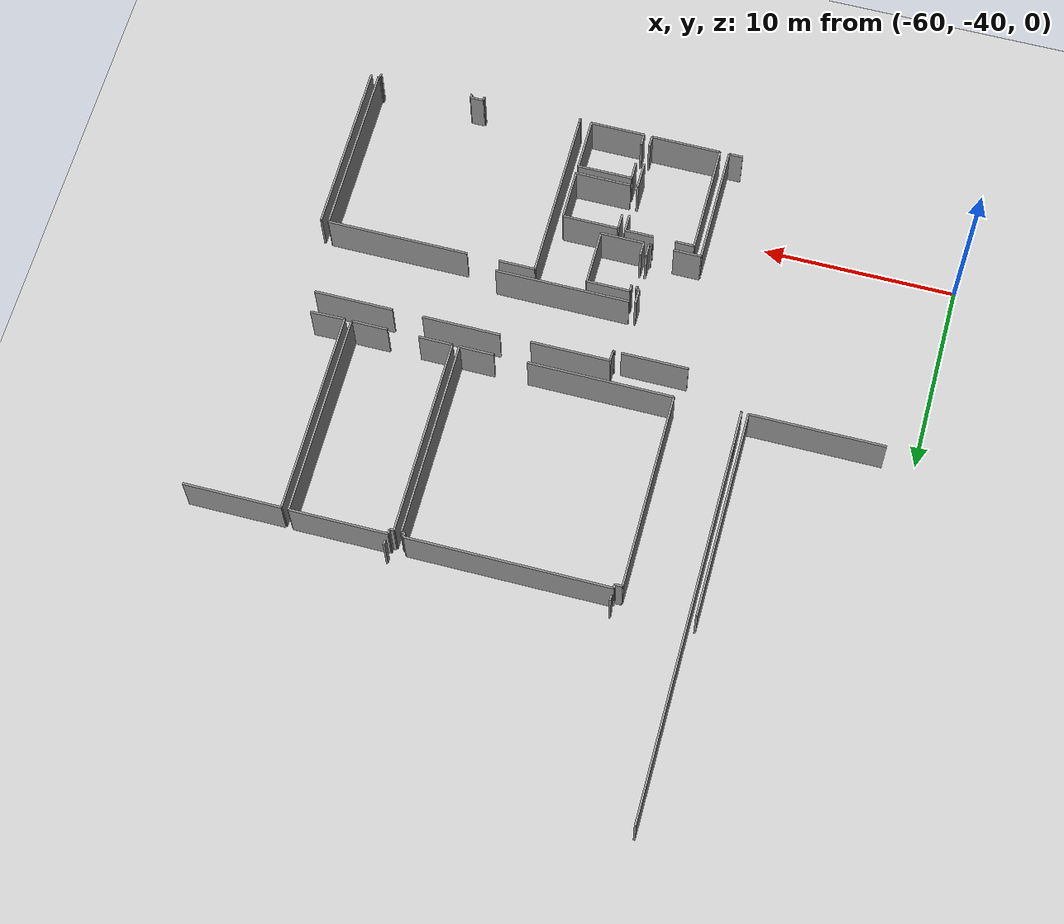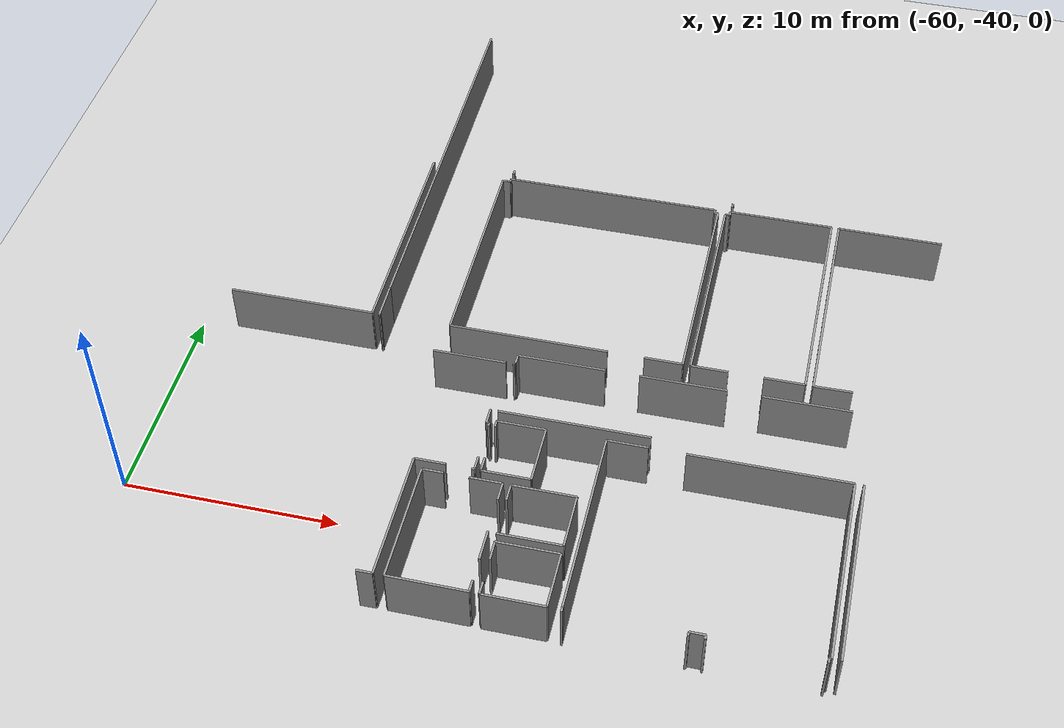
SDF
<sdf version="1.6">
 <world name="default">
  <model name="ground_plane">
   <static>1</static>
   <link name="link">
    <collision name="collision">
     <geometry><plane><normal>0 0 1</normal><size>100 100</size></plane></geometry>
     <surface><friction><ode><mu>100</mu><mu2>50</mu2></ode></friction></surface>
    </collision>
    <visual name="visual">
     <cast_shadows>0</cast_shadows>
     <geometry><plane><normal>0 0 1</normal><size>100 100</size></plane></geometry>
     <material>
      <script><uri>file://media/materials/scripts/gazebo.material</uri><name>Gazebo/Grey</name></script>
     </material>
    </visual>
   </link>
  </model>
  <model name="50015847">
   <static>1</static>
   <link name="Wall_1043">
    <collision name="Wall_1043_Collision">
     <geometry><box><size>0.26058880358 0.1 2.5</size></box></geometry>
     <pose>0.13029440179 0 1.25 0 0 0</pose>
    </collision>
    <visual name="Wall_1043_Visual">
     <pose>0.13029440179 0 1.25 0 0 0</pose>
     <geometry><box><size>0.26058880358 0.1 2.5</size></box></geometry>
     <material>
      <script><uri>file://media/materials/scripts/gazebo.material</uri><name>Gazebo/Grey</name></script>
      <ambient>1 1 1 1</ambient>
     </material>
    </visual>
    <pose>96.3837901053 -62.5560583719 0 0 0 1.57079632679</pose>
   </link>
   <link name="Wall_1047">
    <collision name="Wall_1047_Collision">
     <geometry><box><size>0.243300961001 0.1 2.5</size></box></geometry>
     <pose>0.1216504805 0 1.25 0 0 0</pose>
    </collision>
    <visual name="Wall_1047_Visual">
     <pose>0.1216504805 0 1.25 0 0 0</pose>
     <geometry><box><size>0.243300961001 0.1 2.5</size></box></geometry>
     <material>
      <script><uri>file://media/materials/scripts/gazebo.material</uri><name>Gazebo/Grey</name></script>
      <ambient>1 1 1 1</ambient>
     </material>
    </visual>
    <pose>85.1349977119 -62.5280927442 0 0 0 1.57079632679</pose>
   </link>
   <link name="Wall_1049">
    <collision name="Wall_1049_Collision">
     <geometry><box><size>19.8347485636 0.1 2.5</size></box></geometry>
     <pose>9.91737428179 0 1.25 0 0 0</pose>
    </collision>
    <visual name="Wall_1049_Visual">
     <pose>9.91737428179 0 1.25 0 0 0</pose>
     <geometry><box><size>19.8347485636 0.1 2.5</size></box></geometry>
     <material>
      <script><uri>file://media/materials/scripts/gazebo.material</uri><name>Gazebo/Grey</name></script>
      <ambient>1 1 1 1</ambient>
     </material>
    </visual>
    <pose>81.2917577668 -71.7285300249 0 0 0 1.57079632679</pose>
   </link>
   <link name="Wall_1053">
    <collision name="Wall_1053_Collision">
     <geometry><box><size>0.0655921086083 0.1 2.5</size></box></geometry>
     <pose>0.0327960543042 0 1.25 0 0 0</pose>
    </collision>
    <visual name="Wall_1053_Visual">
     <pose>0.0327960543042 0 1.25 0 0 0</pose>
     <geometry><box><size>0.0655921086083 0.1 2.5</size></box></geometry>
     <material>
      <script><uri>file://media/materials/scripts/gazebo.material</uri><name>Gazebo/Grey</name></script>
      <ambient>1 1 1 1</ambient>
     </material>
    </visual>
    <pose>81.3710784563 -73.5129913052 0 0 0 3.14159265359</pose>
   </link>
   <link name="Wall_1054">
    <collision name="Wall_1054_Collision">
     <geometry><box><size>1.78451408929 0.1 2.5</size></box></geometry>
     <pose>0.892257044646 0 1.25 0 0 0</pose>
    </collision>
    <visual name="Wall_1054_Visual">
     <pose>0.892257044646 0 1.25 0 0 0</pose>
     <geometry><box><size>1.78451408929 0.1 2.5</size></box></geometry>
     <material>
      <script><uri>file://media/materials/scripts/gazebo.material</uri><name>Gazebo/Grey</name></script>
      <ambient>1 1 1 1</ambient>
     </material>
    </visual>
    <pose>81.3054863477 -73.5129913052 0 0 0 1.57848957863</pose>
   </link>
   <link name="Wall_1078">
    <collision name="Wall_1078_Collision">
     <geometry><box><size>10.924645345 0.1 2.5</size></box></geometry>
     <pose>5.4623226725 0 1.25 0 0 0</pose>
    </collision>
    <visual name="Wall_1078_Visual">
     <pose>5.4623226725 0 1.25 0 0 0</pose>
     <geometry><box><size>10.924645345 0.1 2.5</size></box></geometry>
     <material>
      <script><uri>file://media/materials/scripts/gazebo.material</uri><name>Gazebo/Grey</name></script>
      <ambient>1 1 1 1</ambient>
     </material>
    </visual>
    <pose>80.9523567397 -62.5631768953 0 0 0 -1.57079632679</pose>
   </link>
   <link name="Wall_1079">
    <collision name="Wall_1079_Collision">
     <geometry><box><size>6.96572939442 0.1 2.5</size></box></geometry>
     <pose>3.48286469721 0 1.25 0 0 0</pose>
    </collision>
    <visual name="Wall_1079_Visual">
     <pose>3.48286469721 0 1.25 0 0 0</pose>
     <geometry><box><size>6.96572939442 0.1 2.5</size></box></geometry>
     <material>
      <script><uri>file://media/materials/scripts/gazebo.material</uri><name>Gazebo/Grey</name></script>
      <ambient>1 1 1 1</ambient>
     </material>
    </visual>
    <pose>80.9523567397 -73.4878222403 0 0 0 3.14159265359</pose>
   </link>
   <link name="Wall_1300">
    <collision name="Wall_1300_Collision">
     <geometry><box><size>3.44917882748 0.1 2.5</size></box></geometry>
     <pose>1.72458941374 0 1.25 0 0 0</pose>
    </collision>
    <visual name="Wall_1300_Visual">
     <pose>1.72458941374 0 1.25 0 0 0</pose>
     <geometry><box><size>3.44917882748 0.1 2.5</size></box></geometry>
     <material>
      <script><uri>file://media/materials/scripts/gazebo.material</uri><name>Gazebo/Grey</name></script>
      <ambient>1 1 1 1</ambient>
     </material>
    </visual>
    <pose>84.3895866172 -75.1596583109 0 0 0 0.0</pose>
   </link>
   <link name="Wall_1301">
    <collision name="Wall_1301_Collision">
     <geometry><box><size>0.769054761784 0.1 2.5</size></box></geometry>
     <pose>0.384527380892 0 1.25 0 0 0</pose>
    </collision>
    <visual name="Wall_1301_Visual">
     <pose>0.384527380892 0 1.25 0 0 0</pose>
     <geometry><box><size>0.769054761784 0.1 2.5</size></box></geometry>
     <material>
      <script><uri>file://media/materials/scripts/gazebo.material</uri><name>Gazebo/Grey</name></script>
      <ambient>1 1 1 1</ambient>
     </material>
    </visual>
    <pose>87.8387654447 -78.0502872833 0 0 0 -1.57079632679</pose>
   </link>
   <link name="Wall_1302">
    <collision name="Wall_1302_Collision">
     <geometry><box><size>0.142370468297 0.1 2.5</size></box></geometry>
     <pose>0.0711852341486 0 1.25 0 0 0</pose>
    </collision>
    <visual name="Wall_1302_Visual">
     <pose>0.0711852341486 0 1.25 0 0 0</pose>
     <geometry><box><size>0.142370468297 0.1 2.5</size></box></geometry>
     <material>
      <script><uri>file://media/materials/scripts/gazebo.material</uri><name>Gazebo/Grey</name></script>
      <ambient>1 1 1 1</ambient>
     </material>
    </visual>
    <pose>87.8387654447 -78.8193420451 0 0 0 0.0</pose>
   </link>
   <link name="Wall_1303">
    <collision name="Wall_1303_Collision">
     <geometry><box><size>0.185335841765 0.1 2.5</size></box></geometry>
     <pose>0.0926679208827 0 1.25 0 0 0</pose>
    </collision>
    <visual name="Wall_1303_Visual">
     <pose>0.0926679208827 0 1.25 0 0 0</pose>
     <geometry><box><size>0.185335841765 0.1 2.5</size></box></geometry>
     <material>
      <script><uri>file://media/materials/scripts/gazebo.material</uri><name>Gazebo/Grey</name></script>
      <ambient>1 1 1 1</ambient>
     </material>
    </visual>
    <pose>87.981135913 -78.8193420451 0 0 0 -1.57079632679</pose>
   </link>
   <link name="Wall_1304">
    <collision name="Wall_1304_Collision">
     <geometry><box><size>0.681090151014 0.1 2.5</size></box></geometry>
     <pose>0.340545075507 0 1.25 0 0 0</pose>
    </collision>
    <visual name="Wall_1304_Visual">
     <pose>0.340545075507 0 1.25 0 0 0</pose>
     <geometry><box><size>0.681090151014 0.1 2.5</size></box></geometry>
     <material>
      <script><uri>file://media/materials/scripts/gazebo.material</uri><name>Gazebo/Grey</name></script>
      <ambient>1 1 1 1</ambient>
     </material>
    </visual>
    <pose>87.981135913 -80.8089693395 0 0 0 -1.57079632679</pose>
   </link>
   <link name="Wall_1305">
    <collision name="Wall_1305_Collision">
     <geometry><box><size>0.137794274673 0.1 2.5</size></box></geometry>
     <pose>0.0688971373367 0 1.25 0 0 0</pose>
    </collision>
    <visual name="Wall_1305_Visual">
     <pose>0.0688971373367 0 1.25 0 0 0</pose>
     <geometry><box><size>0.137794274673 0.1 2.5</size></box></geometry>
     <material>
      <script><uri>file://media/materials/scripts/gazebo.material</uri><name>Gazebo/Grey</name></script>
      <ambient>1 1 1 1</ambient>
     </material>
    </visual>
    <pose>87.981135913 -81.4900594905 0 0 0 3.14159265359</pose>
   </link>
   <link name="Wall_1306">
    <collision name="Wall_1306_Collision">
     <geometry><box><size>1.43489093405 0.1 2.5</size></box></geometry>
     <pose>0.717445467026 0 1.25 0 0 0</pose>
    </collision>
    <visual name="Wall_1306_Visual">
     <pose>0.717445467026 0 1.25 0 0 0</pose>
     <geometry><box><size>1.43489093405 0.1 2.5</size></box></geometry>
     <material>
      <script><uri>file://media/materials/scripts/gazebo.material</uri><name>Gazebo/Grey</name></script>
      <ambient>1 1 1 1</ambient>
     </material>
    </visual>
    <pose>86.6934458738 -81.4900594905 0 0 0 3.14159265359</pose>
   </link>
   <link name="Wall_1307">
    <collision name="Wall_1307_Collision">
     <geometry><box><size>6.20455585499 0.1 2.5</size></box></geometry>
     <pose>3.10227792749 0 1.25 0 0 0</pose>
    </collision>
    <visual name="Wall_1307_Visual">
     <pose>3.10227792749 0 1.25 0 0 0</pose>
     <geometry><box><size>6.20455585499 0.1 2.5</size></box></geometry>
     <material>
      <script><uri>file://media/materials/scripts/gazebo.material</uri><name>Gazebo/Grey</name></script>
      <ambient>1 1 1 1</ambient>
     </material>
    </visual>
    <pose>85.2585549397 -81.4900594905 0 0 0 -1.57079632679</pose>
   </link>
   <link name="Wall_1308">
    <collision name="Wall_1308_Collision">
     <geometry><box><size>0.729140184065 0.1 2.5</size></box></geometry>
     <pose>0.364570092032 0 1.25 0 0 0</pose>
    </collision>
    <visual name="Wall_1308_Visual">
     <pose>0.364570092032 0 1.25 0 0 0</pose>
     <geometry><box><size>0.729140184065 0.1 2.5</size></box></geometry>
     <material>
      <script><uri>file://media/materials/scripts/gazebo.material</uri><name>Gazebo/Grey</name></script>
      <ambient>1 1 1 1</ambient>
     </material>
    </visual>
    <pose>85.2585549397 -87.6946153455 0 0 0 3.14159265359</pose>
   </link>
   <link name="Wall_1310">
    <collision name="Wall_1310_Collision">
     <geometry><box><size>2.22962322672 0.1 2.5</size></box></geometry>
     <pose>1.11481161336 0 1.25 0 0 0</pose>
    </collision>
    <visual name="Wall_1310_Visual">
     <pose>1.11481161336 0 1.25 0 0 0</pose>
     <geometry><box><size>2.22962322672 0.1 2.5</size></box></geometry>
     <material>
      <script><uri>file://media/materials/scripts/gazebo.material</uri><name>Gazebo/Grey</name></script>
      <ambient>1 1 1 1</ambient>
     </material>
    </visual>
    <pose>88.2836731581 -78.6507855799 0 0 0 0.0</pose>
   </link>
   <link name="Wall_1311">
    <collision name="Wall_1311_Collision">
     <geometry><box><size>2.85427365638 0.1 2.5</size></box></geometry>
     <pose>1.42713682819 0 1.25 0 0 0</pose>
    </collision>
    <visual name="Wall_1311_Visual">
     <pose>1.42713682819 0 1.25 0 0 0</pose>
     <geometry><box><size>2.85427365638 0.1 2.5</size></box></geometry>
     <material>
      <script><uri>file://media/materials/scripts/gazebo.material</uri><name>Gazebo/Grey</name></script>
      <ambient>1 1 1 1</ambient>
     </material>
    </visual>
    <pose>90.5132963848 -78.6507855799 0 0 0 -1.57079632679</pose>
   </link>
   <link name="Wall_1312">
    <collision name="Wall_1312_Collision">
     <geometry><box><size>2.24411450653 0.1 2.5</size></box></geometry>
     <pose>1.12205725327 0 1.25 0 0 0</pose>
    </collision>
    <visual name="Wall_1312_Visual">
     <pose>1.12205725327 0 1.25 0 0 0</pose>
     <geometry><box><size>2.24411450653 0.1 2.5</size></box></geometry>
     <material>
      <script><uri>file://media/materials/scripts/gazebo.material</uri><name>Gazebo/Grey</name></script>
      <ambient>1 1 1 1</ambient>
     </material>
    </visual>
    <pose>90.5132963848 -81.5050592363 0 0 0 3.14159265359</pose>
   </link>
   <link name="Wall_1313">
    <collision name="Wall_1313_Collision">
     <geometry><box><size>0.715665836172 0.1 2.5</size></box></geometry>
     <pose>0.357832918086 0 1.25 0 0 0</pose>
    </collision>
    <visual name="Wall_1313_Visual">
     <pose>0.357832918086 0 1.25 0 0 0</pose>
     <geometry><box><size>0.715665836172 0.1 2.5</size></box></geometry>
     <material>
      <script><uri>file://media/materials/scripts/gazebo.material</uri><name>Gazebo/Grey</name></script>
      <ambient>1 1 1 1</ambient>
     </material>
    </visual>
    <pose>88.2691818783 -81.5050592363 0 0 0 1.57079632679</pose>
   </link>
   <link name="Wall_1314">
    <collision name="Wall_1314_Collision">
     <geometry><box><size>0.33965526008 0.1 2.5</size></box></geometry>
     <pose>0.16982763004 0 1.25 0 0 0</pose>
    </collision>
    <visual name="Wall_1314_Visual">
     <pose>0.16982763004 0 1.25 0 0 0</pose>
     <geometry><box><size>0.33965526008 0.1 2.5</size></box></geometry>
     <material>
      <script><uri>file://media/materials/scripts/gazebo.material</uri><name>Gazebo/Grey</name></script>
      <ambient>1 1 1 1</ambient>
     </material>
    </visual>
    <pose>88.2691818783 -78.9973051304 0 0 0 1.57079632679</pose>
   </link>
   <link name="Wall_1315">
    <collision name="Wall_1315_Collision">
     <geometry><box><size>0.0160348268991 0.1 2.5</size></box></geometry>
     <pose>0.00801741344954 0 1.25 0 0 0</pose>
    </collision>
    <visual name="Wall_1315_Visual">
     <pose>0.00801741344954 0 1.25 0 0 0</pose>
     <geometry><box><size>0.0160348268991 0.1 2.5</size></box></geometry>
     <material>
      <script><uri>file://media/materials/scripts/gazebo.material</uri><name>Gazebo/Grey</name></script>
      <ambient>1 1 1 1</ambient>
     </material>
    </visual>
    <pose>88.2691818783 -78.6576498703 0 0 0 0.442374222978</pose>
   </link>
   <link name="Wall_1316">
    <collision name="Wall_1316_Collision">
     <geometry><box><size>5.71007271063 0.1 2.5</size></box></geometry>
     <pose>2.85503635532 0 1.25 0 0 0</pose>
    </collision>
    <visual name="Wall_1316_Visual">
     <pose>2.85503635532 0 1.25 0 0 0</pose>
     <geometry><box><size>5.71007271063 0.1 2.5</size></box></geometry>
     <material>
      <script><uri>file://media/materials/scripts/gazebo.material</uri><name>Gazebo/Grey</name></script>
      <ambient>1 1 1 1</ambient>
     </material>
    </visual>
    <pose>85.7431229979 -87.6910560838 0 0 0 1.57079632679</pose>
   </link>
   <link name="Wall_1317">
    <collision name="Wall_1317_Collision">
     <geometry><box><size>0.985407027 0.1 2.5</size></box></geometry>
     <pose>0.4927035135 0 1.25 0 0 0</pose>
    </collision>
    <visual name="Wall_1317_Visual">
     <pose>0.4927035135 0 1.25 0 0 0</pose>
     <geometry><box><size>0.985407027 0.1 2.5</size></box></geometry>
     <material>
      <script><uri>file://media/materials/scripts/gazebo.material</uri><name>Gazebo/Grey</name></script>
      <ambient>1 1 1 1</ambient>
     </material>
    </visual>
    <pose>85.7431229979 -81.9809833732 0 0 0 0.0</pose>
   </link>
   <link name="Wall_1318">
    <collision name="Wall_1318_Collision">
     <geometry><box><size>1.49616108202 0.1 2.5</size></box></geometry>
     <pose>0.748080541008 0 1.25 0 0 0</pose>
    </collision>
    <visual name="Wall_1318_Visual">
     <pose>0.748080541008 0 1.25 0 0 0</pose>
     <geometry><box><size>1.49616108202 0.1 2.5</size></box></geometry>
     <material>
      <script><uri>file://media/materials/scripts/gazebo.material</uri><name>Gazebo/Grey</name></script>
      <ambient>1 1 1 1</ambient>
     </material>
    </visual>
    <pose>87.8669853053 -81.9809833732 0 0 0 0.0</pose>
   </link>
   <link name="Wall_1319">
    <collision name="Wall_1319_Collision">
     <geometry><box><size>0.898459348147 0.1 2.5</size></box></geometry>
     <pose>0.449229674073 0 1.25 0 0 0</pose>
    </collision>
    <visual name="Wall_1319_Visual">
     <pose>0.449229674073 0 1.25 0 0 0</pose>
     <geometry><box><size>0.898459348147 0.1 2.5</size></box></geometry>
     <material>
      <script><uri>file://media/materials/scripts/gazebo.material</uri><name>Gazebo/Grey</name></script>
      <ambient>1 1 1 1</ambient>
     </material>
    </visual>
    <pose>89.3631463873 -81.9809833732 0 0 0 -1.57079632679</pose>
   </link>
   <link name="Wall_1320">
    <collision name="Wall_1320_Collision">
     <geometry><box><size>1.44607718513 0.1 2.5</size></box></geometry>
     <pose>0.723038592566 0 1.25 0 0 0</pose>
    </collision>
    <visual name="Wall_1320_Visual">
     <pose>0.723038592566 0 1.25 0 0 0</pose>
     <geometry><box><size>1.44607718513 0.1 2.5</size></box></geometry>
     <material>
      <script><uri>file://media/materials/scripts/gazebo.material</uri><name>Gazebo/Grey</name></script>
      <ambient>1 1 1 1</ambient>
     </material>
    </visual>
    <pose>89.3631463873 -84.5782274877 0 0 0 -1.57079632679</pose>
   </link>
   <link name="Wall_1321">
    <collision name="Wall_1321_Collision">
     <geometry><box><size>0.584481618956 0.1 2.5</size></box></geometry>
     <pose>0.292240809478 0 1.25 0 0 0</pose>
    </collision>
    <visual name="Wall_1321_Visual">
     <pose>0.292240809478 0 1.25 0 0 0</pose>
     <geometry><box><size>0.584481618956 0.1 2.5</size></box></geometry>
     <material>
      <script><uri>file://media/materials/scripts/gazebo.material</uri><name>Gazebo/Grey</name></script>
      <ambient>1 1 1 1</ambient>
     </material>
    </visual>
    <pose>89.3631463873 -87.1121675904 0 0 0 -1.57079632679</pose>
   </link>
   <link name="Wall_1322">
    <collision name="Wall_1322_Collision">
     <geometry><box><size>3.62002771027 0.1 2.5</size></box></geometry>
     <pose>1.81001385513 0 1.25 0 0 0</pose>
    </collision>
    <visual name="Wall_1322_Visual">
     <pose>1.81001385513 0 1.25 0 0 0</pose>
     <geometry><box><size>3.62002771027 0.1 2.5</size></box></geometry>
     <material>
      <script><uri>file://media/materials/scripts/gazebo.material</uri><name>Gazebo/Grey</name></script>
      <ambient>1 1 1 1</ambient>
     </material>
    </visual>
    <pose>89.3631463873 -87.6966492093 0 0 0 3.1400476025</pose>
   </link>
   <link name="Wall_1323">
    <collision name="Wall_1323_Collision">
     <geometry><box><size>2.84817206488 0.1 2.5</size></box></geometry>
     <pose>1.42408603244 0 1.25 0 0 0</pose>
    </collision>
    <visual name="Wall_1323_Visual">
     <pose>1.42408603244 0 1.25 0 0 0</pose>
     <geometry><box><size>2.84817206488 0.1 2.5</size></box></geometry>
     <material>
      <script><uri>file://media/materials/scripts/gazebo.material</uri><name>Gazebo/Grey</name></script>
      <ambient>1 1 1 1</ambient>
     </material>
    </visual>
    <pose>89.7869527635 -81.9934407891 0 0 0 0.0</pose>
   </link>
   <link name="Wall_1324">
    <collision name="Wall_1324_Collision">
     <geometry><box><size>2.61809121879 0.1 2.5</size></box></geometry>
     <pose>1.3090456094 0 1.25 0 0 0</pose>
    </collision>
    <visual name="Wall_1324_Visual">
     <pose>1.3090456094 0 1.25 0 0 0</pose>
     <geometry><box><size>2.61809121879 0.1 2.5</size></box></geometry>
     <material>
      <script><uri>file://media/materials/scripts/gazebo.material</uri><name>Gazebo/Grey</name></script>
      <ambient>1 1 1 1</ambient>
     </material>
    </visual>
    <pose>92.6351248284 -81.9934407891 0 0 0 -1.57079632679</pose>
   </link>
   <link name="Wall_1325">
    <collision name="Wall_1325_Collision">
     <geometry><box><size>2.90639141709 0.1 2.5</size></box></geometry>
     <pose>1.45319570855 0 1.25 0 0 0</pose>
    </collision>
    <visual name="Wall_1325_Visual">
     <pose>1.45319570855 0 1.25 0 0 0</pose>
     <geometry><box><size>2.90639141709 0.1 2.5</size></box></geometry>
     <material>
      <script><uri>file://media/materials/scripts/gazebo.material</uri><name>Gazebo/Grey</name></script>
      <ambient>1 1 1 1</ambient>
     </material>
    </visual>
    <pose>92.6351248284 -84.6115320079 0 0 0 3.14159265359</pose>
   </link>
   <link name="Wall_1326">
    <collision name="Wall_1326_Collision">
     <geometry><box><size>0.827019881019 0.1 2.5</size></box></geometry>
     <pose>0.413509940509 0 1.25 0 0 0</pose>
    </collision>
    <visual name="Wall_1326_Visual">
     <pose>0.413509940509 0 1.25 0 0 0</pose>
     <geometry><box><size>0.827019881019 0.1 2.5</size></box></geometry>
     <material>
      <script><uri>file://media/materials/scripts/gazebo.material</uri><name>Gazebo/Grey</name></script>
      <ambient>1 1 1 1</ambient>
     </material>
    </visual>
    <pose>89.7287334113 -82.8252910968 0 0 0 1.57079632679</pose>
   </link>
   <link name="Wall_1327">
    <collision name="Wall_1327_Collision">
     <geometry><box><size>0.0584193974073 0.1 2.5</size></box></geometry>
     <pose>0.0292096987036 0 1.25 0 0 0</pose>
    </collision>
    <visual name="Wall_1327_Visual">
     <pose>0.0292096987036 0 1.25 0 0 0</pose>
     <geometry><box><size>0.0584193974073 0.1 2.5</size></box></geometry>
     <material>
      <script><uri>file://media/materials/scripts/gazebo.material</uri><name>Gazebo/Grey</name></script>
      <ambient>1 1 1 1</ambient>
     </material>
    </visual>
    <pose>89.7287334113 -81.9982712157 0 0 0 0.0827798296632</pose>
   </link>
   <link name="Wall_1328">
    <collision name="Wall_1328_Collision">
     <geometry><box><size>2.83774851274 0.1 2.5</size></box></geometry>
     <pose>1.41887425637 0 1.25 0 0 0</pose>
    </collision>
    <visual name="Wall_1328_Visual">
     <pose>1.41887425637 0 1.25 0 0 0</pose>
     <geometry><box><size>2.83774851274 0.1 2.5</size></box></geometry>
     <material>
      <script><uri>file://media/materials/scripts/gazebo.material</uri><name>Gazebo/Grey</name></script>
      <ambient>1 1 1 1</ambient>
     </material>
    </visual>
    <pose>89.7821223369 -85.0348299181 0 0 0 0.0</pose>
   </link>
   <link name="Wall_1329">
    <collision name="Wall_1329_Collision">
     <geometry><box><size>2.67809020186 0.1 2.5</size></box></geometry>
     <pose>1.33904510093 0 1.25 0 0 0</pose>
    </collision>
    <visual name="Wall_1329_Visual">
     <pose>1.33904510093 0 1.25 0 0 0</pose>
     <geometry><box><size>2.67809020186 0.1 2.5</size></box></geometry>
     <material>
      <script><uri>file://media/materials/scripts/gazebo.material</uri><name>Gazebo/Grey</name></script>
      <ambient>1 1 1 1</ambient>
     </material>
    </visual>
    <pose>92.6198708496 -85.0348299181 0 0 0 -1.57079632679</pose>
   </link>
   <link name="Wall_1330">
    <collision name="Wall_1330_Collision">
     <geometry><box><size>2.82452839782 0.1 2.5</size></box></geometry>
     <pose>1.41226419891 0 1.25 0 0 0</pose>
    </collision>
    <visual name="Wall_1330_Visual">
     <pose>1.41226419891 0 1.25 0 0 0</pose>
     <geometry><box><size>2.82452839782 0.1 2.5</size></box></geometry>
     <material>
      <script><uri>file://media/materials/scripts/gazebo.material</uri><name>Gazebo/Grey</name></script>
      <ambient>1 1 1 1</ambient>
     </material>
    </visual>
    <pose>92.6198708496 -87.71292012 0 0 0 3.14159265359</pose>
   </link>
   <link name="Wall_1331">
    <collision name="Wall_1331_Collision">
     <geometry><box><size>0.616514974322 0.1 2.5</size></box></geometry>
     <pose>0.308257487161 0 1.25 0 0 0</pose>
    </collision>
    <visual name="Wall_1331_Visual">
     <pose>0.308257487161 0 1.25 0 0 0</pose>
     <geometry><box><size>0.616514974322 0.1 2.5</size></box></geometry>
     <material>
      <script><uri>file://media/materials/scripts/gazebo.material</uri><name>Gazebo/Grey</name></script>
      <ambient>1 1 1 1</ambient>
     </material>
    </visual>
    <pose>89.7953424518 -87.71292012 0 0 0 1.57079632679</pose>
   </link>
   <link name="Wall_1332">
    <collision name="Wall_1332_Collision">
     <geometry><box><size>0.927536125289 0.1 2.5</size></box></geometry>
     <pose>0.463768062644 0 1.25 0 0 0</pose>
    </collision>
    <visual name="Wall_1332_Visual">
     <pose>0.463768062644 0 1.25 0 0 0</pose>
     <geometry><box><size>0.927536125289 0.1 2.5</size></box></geometry>
     <material>
      <script><uri>file://media/materials/scripts/gazebo.material</uri><name>Gazebo/Grey</name></script>
      <ambient>1 1 1 1</ambient>
     </material>
    </visual>
    <pose>89.7953424518 -85.9622718259 0 0 0 1.58504974744</pose>
   </link>
   <link name="Wall_1333">
    <collision name="Wall_1333_Collision">
     <geometry><box><size>8.93374688565 0.1 2.5</size></box></geometry>
     <pose>4.46687344282 0 1.25 0 0 0</pose>
    </collision>
    <visual name="Wall_1333_Visual">
     <pose>4.46687344282 0 1.25 0 0 0</pose>
     <geometry><box><size>8.93374688565 0.1 2.5</size></box></geometry>
     <material>
      <script><uri>file://media/materials/scripts/gazebo.material</uri><name>Gazebo/Grey</name></script>
      <ambient>1 1 1 1</ambient>
     </material>
    </visual>
    <pose>93.235877358 -87.5868205624 0 0 0 1.57079632679</pose>
   </link>
   <link name="Wall_1334">
    <collision name="Wall_1334_Collision">
     <geometry><box><size>1.89378146133 0.1 2.5</size></box></geometry>
     <pose>0.946890730666 0 1.25 0 0 0</pose>
    </collision>
    <visual name="Wall_1334_Visual">
     <pose>0.946890730666 0 1.25 0 0 0</pose>
     <geometry><box><size>1.89378146133 0.1 2.5</size></box></geometry>
     <material>
      <script><uri>file://media/materials/scripts/gazebo.material</uri><name>Gazebo/Grey</name></script>
      <ambient>1 1 1 1</ambient>
     </material>
    </visual>
    <pose>93.235877358 -78.6530736767 0 0 0 0.0</pose>
   </link>
   <link name="Wall_1335">
    <collision name="Wall_1335_Collision">
     <geometry><box><size>7.34835002797 0.1 2.5</size></box></geometry>
     <pose>3.67417501398 0 1.25 0 0 0</pose>
    </collision>
    <visual name="Wall_1335_Visual">
     <pose>3.67417501398 0 1.25 0 0 0</pose>
     <geometry><box><size>7.34835002797 0.1 2.5</size></box></geometry>
     <material>
      <script><uri>file://media/materials/scripts/gazebo.material</uri><name>Gazebo/Grey</name></script>
      <ambient>1 1 1 1</ambient>
     </material>
    </visual>
    <pose>96.7974271623 -78.6530736767 0 0 0 0.0</pose>
   </link>
   <link name="Wall_1336">
    <collision name="Wall_1336_Collision">
     <geometry><box><size>8.96094981441 0.1 2.5</size></box></geometry>
     <pose>4.4804749072 0 1.25 0 0 0</pose>
    </collision>
    <visual name="Wall_1336_Visual">
     <pose>4.4804749072 0 1.25 0 0 0</pose>
     <geometry><box><size>8.96094981441 0.1 2.5</size></box></geometry>
     <material>
      <script><uri>file://media/materials/scripts/gazebo.material</uri><name>Gazebo/Grey</name></script>
      <ambient>1 1 1 1</ambient>
     </material>
    </visual>
    <pose>104.14577719 -78.6530736767 0 0 0 -1.57079632679</pose>
   </link>
   <link name="Wall_1337">
    <collision name="Wall_1337_Collision">
     <geometry><box><size>0.094574668226 0.1 2.5</size></box></geometry>
     <pose>0.047287334113 0 1.25 0 0 0</pose>
    </collision>
    <visual name="Wall_1337_Visual">
     <pose>0.047287334113 0 1.25 0 0 0</pose>
     <geometry><box><size>0.094574668226 0.1 2.5</size></box></geometry>
     <material>
      <script><uri>file://media/materials/scripts/gazebo.material</uri><name>Gazebo/Grey</name></script>
      <ambient>1 1 1 1</ambient>
     </material>
    </visual>
    <pose>104.14577719 -87.6140234911 0 0 0 3.14159265359</pose>
   </link>
   <link name="Wall_1338">
    <collision name="Wall_1338_Collision">
     <geometry><box><size>0.210759139676 0.1 2.5</size></box></geometry>
     <pose>0.105379569838 0 1.25 0 0 0</pose>
    </collision>
    <visual name="Wall_1338_Visual">
     <pose>0.105379569838 0 1.25 0 0 0</pose>
     <geometry><box><size>0.210759139676 0.1 2.5</size></box></geometry>
     <material>
      <script><uri>file://media/materials/scripts/gazebo.material</uri><name>Gazebo/Grey</name></script>
      <ambient>1 1 1 1</ambient>
     </material>
    </visual>
    <pose>104.051202522 -87.6140234911 0 0 0 -1.57079632679</pose>
   </link>
   <link name="Wall_1339">
    <collision name="Wall_1339_Collision">
     <geometry><box><size>0.200081354553 0.1 2.5</size></box></geometry>
     <pose>0.100040677277 0 1.25 0 0 0</pose>
    </collision>
    <visual name="Wall_1339_Visual">
     <pose>0.100040677277 0 1.25 0 0 0</pose>
     <geometry><box><size>0.200081354553 0.1 2.5</size></box></geometry>
     <material>
      <script><uri>file://media/materials/scripts/gazebo.material</uri><name>Gazebo/Grey</name></script>
      <ambient>1 1 1 1</ambient>
     </material>
    </visual>
    <pose>99.1170488636 -87.8247826308 0 0 0 1.57079632679</pose>
   </link>
   <link name="Wall_1340">
    <collision name="Wall_1340_Collision">
     <geometry><box><size>0.689988305283 0.1 2.5</size></box></geometry>
     <pose>0.344994152641 0 1.25 0 0 0</pose>
    </collision>
    <visual name="Wall_1340_Visual">
     <pose>0.344994152641 0 1.25 0 0 0</pose>
     <geometry><box><size>0.689988305283 0.1 2.5</size></box></geometry>
     <material>
      <script><uri>file://media/materials/scripts/gazebo.material</uri><name>Gazebo/Grey</name></script>
      <ambient>1 1 1 1</ambient>
     </material>
    </visual>
    <pose>99.1170488636 -87.6247012762 0 0 0 3.14159265359</pose>
   </link>
   <link name="Wall_1341">
    <collision name="Wall_1341_Collision">
     <geometry><box><size>0.190420501347 0.1 2.5</size></box></geometry>
     <pose>0.0952102506737 0 1.25 0 0 0</pose>
    </collision>
    <visual name="Wall_1341_Visual">
     <pose>0.0952102506737 0 1.25 0 0 0</pose>
     <geometry><box><size>0.190420501347 0.1 2.5</size></box></geometry>
     <material>
      <script><uri>file://media/materials/scripts/gazebo.material</uri><name>Gazebo/Grey</name></script>
      <ambient>1 1 1 1</ambient>
     </material>
    </visual>
    <pose>98.4270605583 -87.6247012762 0 0 0 -1.57079632679</pose>
   </link>
   <link name="Wall_1342">
    <collision name="Wall_1342_Collision">
     <geometry><box><size>0.228396886443 0.1 2.5</size></box></geometry>
     <pose>0.114198443221 0 1.25 0 0 0</pose>
    </collision>
    <visual name="Wall_1342_Visual">
     <pose>0.114198443221 0 1.25 0 0 0</pose>
     <geometry><box><size>0.228396886443 0.1 2.5</size></box></geometry>
     <material>
      <script><uri>file://media/materials/scripts/gazebo.material</uri><name>Gazebo/Grey</name></script>
      <ambient>1 1 1 1</ambient>
     </material>
    </visual>
    <pose>93.2424874155 -87.8151217776 0 0 0 1.59974146986</pose>
   </link>
   <link name="Wall_1343">
    <collision name="Wall_1343_Collision">
     <geometry><box><size>8.9927289368 0.1 2.5</size></box></geometry>
     <pose>4.4963644684 0 1.25 0 0 0</pose>
    </collision>
    <visual name="Wall_1343_Visual">
     <pose>4.4963644684 0 1.25 0 0 0</pose>
     <geometry><box><size>8.9927289368 0.1 2.5</size></box></geometry>
     <material>
      <script><uri>file://media/materials/scripts/gazebo.material</uri><name>Gazebo/Grey</name></script>
      <ambient>1 1 1 1</ambient>
     </material>
    </visual>
    <pose>104.546194132 -87.639955255 0 0 0 1.57079632679</pose>
   </link>
   <link name="Wall_1663">
    <collision name="Wall_1663_Collision">
     <geometry><box><size>10.5875324147 0.1 2.5</size></box></geometry>
     <pose>5.29376620735 0 1.25 0 0 0</pose>
    </collision>
    <visual name="Wall_1663_Visual">
     <pose>5.29376620735 0 1.25 0 0 0</pose>
     <geometry><box><size>10.5875324147 0.1 2.5</size></box></geometry>
     <material>
      <script><uri>file://media/materials/scripts/gazebo.material</uri><name>Gazebo/Grey</name></script>
      <ambient>1 1 1 1</ambient>
     </material>
    </visual>
    <pose>101.740224742 -73.5048558499 0 0 0 1.57079632679</pose>
   </link>
   <link name="Wall_1664">
    <collision name="Wall_1664_Collision">
     <geometry><box><size>5.02999949153 0.1 2.5</size></box></geometry>
     <pose>2.51499974577 0 1.25 0 0 0</pose>
    </collision>
    <visual name="Wall_1664_Visual">
     <pose>2.51499974577 0 1.25 0 0 0</pose>
     <geometry><box><size>5.02999949153 0.1 2.5</size></box></geometry>
     <material>
      <script><uri>file://media/materials/scripts/gazebo.material</uri><name>Gazebo/Grey</name></script>
      <ambient>1 1 1 1</ambient>
     </material>
    </visual>
    <pose>101.740224742 -62.9173234352 0 0 0 0.0</pose>
   </link>
   <link name="Wall_1669">
    <collision name="Wall_1669_Collision">
     <geometry><box><size>1.77491337347 0.1 2.5</size></box></geometry>
     <pose>0.887456686733 0 1.25 0 0 0</pose>
    </collision>
    <visual name="Wall_1669_Visual">
     <pose>0.887456686733 0 1.25 0 0 0</pose>
     <geometry><box><size>1.77491337347 0.1 2.5</size></box></geometry>
     <material>
      <script><uri>file://media/materials/scripts/gazebo.material</uri><name>Gazebo/Grey</name></script>
      <ambient>1 1 1 1</ambient>
     </material>
    </visual>
    <pose>103.514770936 -73.4687547669 0 0 0 -3.12125161993</pose>
   </link>
   <link name="Wall_1670">
    <collision name="Wall_1670_Collision">
     <geometry><box><size>10.3094015356 0.1 2.5</size></box></geometry>
     <pose>5.15470076778 0 1.25 0 0 0</pose>
    </collision>
    <visual name="Wall_1670_Visual">
     <pose>5.15470076778 0 1.25 0 0 0</pose>
     <geometry><box><size>10.3094015356 0.1 2.5</size></box></geometry>
     <material>
      <script><uri>file://media/materials/scripts/gazebo.material</uri><name>Gazebo/Grey</name></script>
      <ambient>1 1 1 1</ambient>
     </material>
    </visual>
    <pose>96.1198962729 -73.4580769817 0 0 0 1.57079632679</pose>
   </link>
   <link name="Wall_1671">
    <collision name="Wall_1671_Collision">
     <geometry><box><size>0.221691157777 0.1 2.5</size></box></geometry>
     <pose>0.110845578888 0 1.25 0 0 0</pose>
    </collision>
    <visual name="Wall_1671_Visual">
     <pose>0.110845578888 0 1.25 0 0 0</pose>
     <geometry><box><size>0.221691157777 0.1 2.5</size></box></geometry>
     <material>
      <script><uri>file://media/materials/scripts/gazebo.material</uri><name>Gazebo/Grey</name></script>
      <ambient>1 1 1 1</ambient>
     </material>
    </visual>
    <pose>96.1198962729 -63.1486754462 0 0 0 0.0</pose>
   </link>
   <link name="Wall_1672">
    <collision name="Wall_1672_Collision">
     <geometry><box><size>0.245843290792 0.1 2.5</size></box></geometry>
     <pose>0.122921645396 0 1.25 0 0 0</pose>
    </collision>
    <visual name="Wall_1672_Visual">
     <pose>0.122921645396 0 1.25 0 0 0</pose>
     <geometry><box><size>0.245843290792 0.1 2.5</size></box></geometry>
     <material>
      <script><uri>file://media/materials/scripts/gazebo.material</uri><name>Gazebo/Grey</name></script>
      <ambient>1 1 1 1</ambient>
     </material>
    </visual>
    <pose>96.3415874307 -63.1486754462 0 0 0 1.57079632679</pose>
   </link>
   <link name="Wall_1673">
    <collision name="Wall_1673_Collision">
     <geometry><box><size>5.03076219047 0.1 2.5</size></box></geometry>
     <pose>2.51538109524 0 1.25 0 0 0</pose>
    </collision>
    <visual name="Wall_1673_Visual">
     <pose>2.51538109524 0 1.25 0 0 0</pose>
     <geometry><box><size>5.03076219047 0.1 2.5</size></box></geometry>
     <material>
      <script><uri>file://media/materials/scripts/gazebo.material</uri><name>Gazebo/Grey</name></script>
      <ambient>1 1 1 1</ambient>
     </material>
    </visual>
    <pose>96.3415874307 -62.9028321554 0 0 0 0.0</pose>
   </link>
   <link name="Wall_1674">
    <collision name="Wall_1674_Collision">
     <geometry><box><size>10.5875324147 0.1 2.5</size></box></geometry>
     <pose>5.29376620735 0 1.25 0 0 0</pose>
    </collision>
    <visual name="Wall_1674_Visual">
     <pose>5.29376620735 0 1.25 0 0 0</pose>
     <geometry><box><size>10.5875324147 0.1 2.5</size></box></geometry>
     <material>
      <script><uri>file://media/materials/scripts/gazebo.material</uri><name>Gazebo/Grey</name></script>
      <ambient>1 1 1 1</ambient>
     </material>
    </visual>
    <pose>101.372349621 -62.9028321554 0 0 0 -1.57079632679</pose>
   </link>
   <link name="Wall_1675">
    <collision name="Wall_1675_Collision">
     <geometry><box><size>1.8869171709 0.1 2.5</size></box></geometry>
     <pose>0.943458585448 0 1.25 0 0 0</pose>
    </collision>
    <visual name="Wall_1675_Visual">
     <pose>0.943458585448 0 1.25 0 0 0</pose>
     <geometry><box><size>1.8869171709 0.1 2.5</size></box></geometry>
     <material>
      <script><uri>file://media/materials/scripts/gazebo.material</uri><name>Gazebo/Grey</name></script>
      <ambient>1 1 1 1</ambient>
     </material>
    </visual>
    <pose>101.372349621 -73.4903645701 0 0 0 3.14159265359</pose>
   </link>
   <link name="Wall_1676">
    <collision name="Wall_1676_Collision">
     <geometry><box><size>1.74073320791 0.1 2.5</size></box></geometry>
     <pose>0.870366603956 0 1.25 0 0 0</pose>
    </collision>
    <visual name="Wall_1676_Visual">
     <pose>0.870366603956 0 1.25 0 0 0</pose>
     <geometry><box><size>1.74073320791 0.1 2.5</size></box></geometry>
     <material>
      <script><uri>file://media/materials/scripts/gazebo.material</uri><name>Gazebo/Grey</name></script>
      <ambient>1 1 1 1</ambient>
     </material>
    </visual>
    <pose>97.8606294809 -73.4903645701 0 0 0 3.14159265359</pose>
   </link>
   <link name="Wall_1677">
    <collision name="Wall_1677_Collision">
     <geometry><box><size>0.032287588346 0.1 2.5</size></box></geometry>
     <pose>0.016143794173 0 1.25 0 0 0</pose>
    </collision>
    <visual name="Wall_1677_Visual">
     <pose>0.016143794173 0 1.25 0 0 0</pose>
     <geometry><box><size>0.032287588346 0.1 2.5</size></box></geometry>
     <material>
      <script><uri>file://media/materials/scripts/gazebo.material</uri><name>Gazebo/Grey</name></script>
      <ambient>1 1 1 1</ambient>
     </material>
    </visual>
    <pose>96.1198962729 -73.4903645701 0 0 0 1.57079632679</pose>
   </link>
   <link name="Wall_1678">
    <collision name="Wall_1678_Collision">
     <geometry><box><size>10.3317740377 0.1 2.5</size></box></geometry>
     <pose>5.16588701886 0 1.25 0 0 0</pose>
    </collision>
    <visual name="Wall_1678_Visual">
     <pose>5.16588701886 0 1.25 0 0 0</pose>
     <geometry><box><size>10.3317740377 0.1 2.5</size></box></geometry>
     <material>
      <script><uri>file://media/materials/scripts/gazebo.material</uri><name>Gazebo/Grey</name></script>
      <ambient>1 1 1 1</ambient>
     </material>
    </visual>
    <pose>84.7310215081 -73.4651955052 0 0 0 1.57079632679</pose>
   </link>
   <link name="Wall_1679">
    <collision name="Wall_1679_Collision">
     <geometry><box><size>0.382366400569 0.1 2.5</size></box></geometry>
     <pose>0.191183200285 0 1.25 0 0 0</pose>
    </collision>
    <visual name="Wall_1679_Visual">
     <pose>0.191183200285 0 1.25 0 0 0</pose>
     <geometry><box><size>0.382366400569 0.1 2.5</size></box></geometry>
     <material>
      <script><uri>file://media/materials/scripts/gazebo.material</uri><name>Gazebo/Grey</name></script>
      <ambient>1 1 1 1</ambient>
     </material>
    </visual>
    <pose>84.7310215081 -63.1334214674 0 0 0 0.0</pose>
   </link>
   <link name="Wall_1680">
    <collision name="Wall_1680_Collision">
     <geometry><box><size>0.200589820512 0.1 2.5</size></box></geometry>
     <pose>0.100294910256 0 1.25 0 0 0</pose>
    </collision>
    <visual name="Wall_1680_Visual">
     <pose>0.100294910256 0 1.25 0 0 0</pose>
     <geometry><box><size>0.200589820512 0.1 2.5</size></box></geometry>
     <material>
      <script><uri>file://media/materials/scripts/gazebo.material</uri><name>Gazebo/Grey</name></script>
      <ambient>1 1 1 1</ambient>
     </material>
    </visual>
    <pose>85.1133879087 -63.1334214674 0 0 0 1.57079632679</pose>
   </link>
   <link name="Wall_1681">
    <collision name="Wall_1681_Collision">
     <geometry><box><size>10.4655005847 0.1 2.5</size></box></geometry>
     <pose>5.23275029237 0 1.25 0 0 0</pose>
    </collision>
    <visual name="Wall_1681_Visual">
     <pose>5.23275029237 0 1.25 0 0 0</pose>
     <geometry><box><size>10.4655005847 0.1 2.5</size></box></geometry>
     <material>
      <script><uri>file://media/materials/scripts/gazebo.material</uri><name>Gazebo/Grey</name></script>
      <ambient>1 1 1 1</ambient>
     </material>
    </visual>
    <pose>85.1133879087 -62.9328316469 0 0 0 0.0</pose>
   </link>
   <link name="Wall_1682">
    <collision name="Wall_1682_Collision">
     <geometry><box><size>0.210250673717 0.1 2.5</size></box></geometry>
     <pose>0.105125336859 0 1.25 0 0 0</pose>
    </collision>
    <visual name="Wall_1682_Visual">
     <pose>0.105125336859 0 1.25 0 0 0</pose>
     <geometry><box><size>0.210250673717 0.1 2.5</size></box></geometry>
     <material>
      <script><uri>file://media/materials/scripts/gazebo.material</uri><name>Gazebo/Grey</name></script>
      <ambient>1 1 1 1</ambient>
     </material>
    </visual>
    <pose>95.5788884934 -62.9328316469 0 0 0 -1.57079632679</pose>
   </link>
   <link name="Wall_1683">
    <collision name="Wall_1683_Collision">
     <geometry><box><size>0.171861493873 0.1 2.5</size></box></geometry>
     <pose>0.0859307469365 0 1.25 0 0 0</pose>
    </collision>
    <visual name="Wall_1683_Visual">
     <pose>0.0859307469365 0 1.25 0 0 0</pose>
     <geometry><box><size>0.171861493873 0.1 2.5</size></box></geometry>
     <material>
      <script><uri>file://media/materials/scripts/gazebo.material</uri><name>Gazebo/Grey</name></script>
      <ambient>1 1 1 1</ambient>
     </material>
    </visual>
    <pose>95.5788884934 -63.1430823206 0 0 0 0.0</pose>
   </link>
   <link name="Wall_1684">
    <collision name="Wall_1684_Collision">
     <geometry><box><size>10.3317740377 0.1 2.5</size></box></geometry>
     <pose>5.16588701886 0 1.25 0 0 0</pose>
    </collision>
    <visual name="Wall_1684_Visual">
     <pose>5.16588701886 0 1.25 0 0 0</pose>
     <geometry><box><size>10.3317740377 0.1 2.5</size></box></geometry>
     <material>
      <script><uri>file://media/materials/scripts/gazebo.material</uri><name>Gazebo/Grey</name></script>
      <ambient>1 1 1 1</ambient>
     </material>
    </visual>
    <pose>95.7507499873 -63.1430823206 0 0 0 -1.57079632679</pose>
   </link>
   <link name="Wall_1685">
    <collision name="Wall_1685_Collision">
     <geometry><box><size>1.79666446331 0.1 2.5</size></box></geometry>
     <pose>0.898332231657 0 1.25 0 0 0</pose>
    </collision>
    <visual name="Wall_1685_Visual">
     <pose>0.898332231657 0 1.25 0 0 0</pose>
     <geometry><box><size>1.79666446331 0.1 2.5</size></box></geometry>
     <material>
      <script><uri>file://media/materials/scripts/gazebo.material</uri><name>Gazebo/Grey</name></script>
      <ambient>1 1 1 1</ambient>
     </material>
    </visual>
    <pose>95.7507499873 -73.4748563584 0 0 0 3.14159265359</pose>
   </link>
   <link name="Wall_1686">
    <collision name="Wall_1686_Collision">
     <geometry><box><size>7.50521799389 0.1 2.5</size></box></geometry>
     <pose>3.75260899694 0 1.25 0 0 0</pose>
    </collision>
    <visual name="Wall_1686_Visual">
     <pose>3.75260899694 0 1.25 0 0 0</pose>
     <geometry><box><size>7.50521799389 0.1 2.5</size></box></geometry>
     <material>
      <script><uri>file://media/materials/scripts/gazebo.material</uri><name>Gazebo/Grey</name></script>
      <ambient>1 1 1 1</ambient>
     </material>
    </visual>
    <pose>92.2362332842 -73.4748563584 0 0 0 3.14030543503</pose>
   </link>
   <link name="Wall_1687">
    <collision name="Wall_1687_Collision">
     <geometry><box><size>4.09569329333 0.1 2.5</size></box></geometry>
     <pose>2.04784664667 0 1.25 0 0 0</pose>
    </collision>
    <visual name="Wall_1687_Visual">
     <pose>2.04784664667 0 1.25 0 0 0</pose>
     <geometry><box><size>4.09569329333 0.1 2.5</size></box></geometry>
     <material>
      <script><uri>file://media/materials/scripts/gazebo.material</uri><name>Gazebo/Grey</name></script>
      <ambient>1 1 1 1</ambient>
     </material>
    </visual>
    <pose>88.2821477602 -74.6194132303 0 0 0 0.0</pose>
   </link>
   <link name="Wall_1688">
    <collision name="Wall_1688_Collision">
     <geometry><box><size>4.04103320283 0.1 2.5</size></box></geometry>
     <pose>2.02051660141 0 1.25 0 0 0</pose>
    </collision>
    <visual name="Wall_1688_Visual">
     <pose>2.02051660141 0 1.25 0 0 0</pose>
     <geometry><box><size>4.04103320283 0.1 2.5</size></box></geometry>
     <material>
      <script><uri>file://media/materials/scripts/gazebo.material</uri><name>Gazebo/Grey</name></script>
      <ambient>1 1 1 1</ambient>
     </material>
    </visual>
    <pose>93.9553566889 -74.6194132303 0 0 0 0.0</pose>
   </link>
   <link name="Wall_1689">
    <collision name="Wall_1689_Collision">
     <geometry><box><size>4.09060863375 0.1 2.5</size></box></geometry>
     <pose>2.04530431688 0 1.25 0 0 0</pose>
    </collision>
    <visual name="Wall_1689_Visual">
     <pose>2.04530431688 0 1.25 0 0 0</pose>
     <geometry><box><size>4.09060863375 0.1 2.5</size></box></geometry>
     <material>
      <script><uri>file://media/materials/scripts/gazebo.material</uri><name>Gazebo/Grey</name></script>
      <ambient>1 1 1 1</ambient>
     </material>
    </visual>
    <pose>99.5548380536 -74.6194132303 0 0 0 0.0</pose>
   </link>
   <link name="Wall_1723">
    <collision name="Wall_1723_Collision">
     <geometry><box><size>6.97106828698 0.1 2.5</size></box></geometry>
     <pose>3.48553414349 0 1.25 0 0 0</pose>
    </collision>
    <visual name="Wall_1723_Visual">
     <pose>3.48553414349 0 1.25 0 0 0</pose>
     <geometry><box><size>6.97106828698 0.1 2.5</size></box></geometry>
     <material>
      <script><uri>file://media/materials/scripts/gazebo.material</uri><name>Gazebo/Grey</name></script>
      <ambient>1 1 1 1</ambient>
     </material>
    </visual>
    <pose>95.1390654396 -78.0716428535 0 0 0 3.14159265359</pose>
   </link>
   <link name="Wall_1724">
    <collision name="Wall_1724_Collision">
     <geometry><box><size>0.092032338435 0.1 2.5</size></box></geometry>
     <pose>0.0460161692175 0 1.25 0 0 0</pose>
    </collision>
    <visual name="Wall_1724_Visual">
     <pose>0.0460161692175 0 1.25 0 0 0</pose>
     <geometry><box><size>0.092032338435 0.1 2.5</size></box></geometry>
     <material>
      <script><uri>file://media/materials/scripts/gazebo.material</uri><name>Gazebo/Grey</name></script>
      <ambient>1 1 1 1</ambient>
     </material>
    </visual>
    <pose>88.1679971526 -75.15787868 0 0 0 0.0</pose>
   </link>
   <link name="Wall_1725">
    <collision name="Wall_1725_Collision">
     <geometry><box><size>0.538919528681 0.1 2.5</size></box></geometry>
     <pose>0.26945976434 0 1.25 0 0 0</pose>
    </collision>
    <visual name="Wall_1725_Visual">
     <pose>0.26945976434 0 1.25 0 0 0</pose>
     <geometry><box><size>0.538919528681 0.1 2.5</size></box></geometry>
     <material>
      <script><uri>file://media/materials/scripts/gazebo.material</uri><name>Gazebo/Grey</name></script>
      <ambient>1 1 1 1</ambient>
     </material>
    </visual>
    <pose>88.260029491 -75.15787868 0 0 0 1.52974291866</pose>
   </link>
   <pose>-132.35 43.9162226064 0 0 0 0</pose>
  </model>
 </world>
</sdf>
